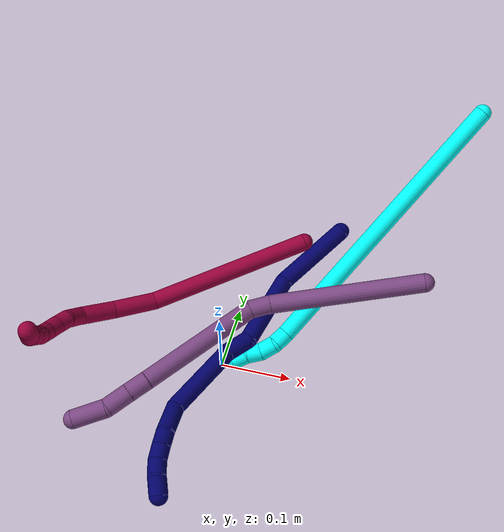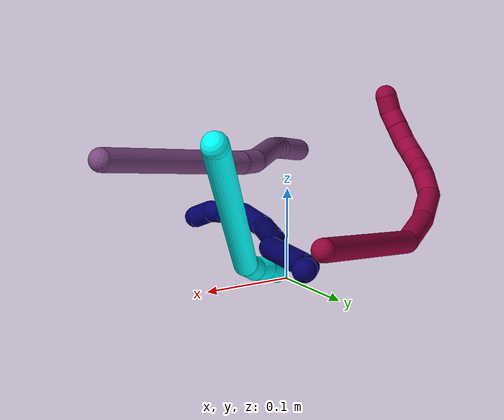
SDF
<sdf version="1.7">
 <world name="default">
  <model name="3">
   <static>0</static>
   <link name="3">
    <collision name="collision-cylinder-e_1_1_4">
     <pose>0.020495 -0.067424 -0.194718 2.80825 0.099133 0.573495</pose>
     <geometry><cylinder><radius>0.0125</radius><length>0.414155</length></cylinder></geometry>
     <surface>
      <friction><ode><mu>1.16</mu><mu2>1.16</mu2><slip1>0</slip1><slip2>0</slip2></ode></friction>
      <contact><ode><kp>1e+06</kp><kd>1</kd><max_vel>0</max_vel><min_depth>0.001</min_depth></ode></contact>
     </surface>
    </collision>
    <visual name="visual-cylinder-e_1_1_4">
     <pose>0.020495 -0.067424 -0.194718 2.80825 0.099133 0.573495</pose>
     <geometry><cylinder><radius>0.0125</radius><length>0.414155</length></cylinder></geometry>
     <material><ambient>0.003922 1 0.996078 1</ambient></material>
    </visual>
    <collision name="collision-cylinder-e_2_4_5">
     <pose>0.040962 -0.140378 -0.398579 2.59752 -0.002528 -0.009061</pose>
     <geometry><cylinder><radius>0.0125</radius><length>0.02137</length></cylinder></geometry>
     <surface>
      <friction><ode><mu>1.16</mu><mu2>1.16</mu2><slip1>0</slip1><slip2>0</slip2></ode></friction>
      <contact><ode><kp>1e+06</kp><kd>1</kd><max_vel>0</max_vel><min_depth>0.001</min_depth></ode></contact>
     </surface>
    </collision>
    <visual name="visual-cylinder-e_2_4_5">
     <pose>0.040962 -0.140378 -0.398579 2.59752 -0.002528 -0.009061</pose>
     <geometry><cylinder><radius>0.0125</radius><length>0.02137</length></cylinder></geometry>
     <material><ambient>0.003922 1 0.996078 1</ambient></material>
    </visual>
    <collision name="collision-cylinder-e_3_5_6">
     <pose>0.038513 -0.147643 -0.418744 2.98559 -0.213726 -1.88222</pose>
     <geometry><cylinder><radius>0.0125</radius><length>0.022836</length></cylinder></geometry>
     <surface>
      <friction><ode><mu>1.16</mu><mu2>1.16</mu2><slip1>0</slip1><slip2>0</slip2></ode></friction>
      <contact><ode><kp>1e+06</kp><kd>1</kd><max_vel>0</max_vel><min_depth>0.001</min_depth></ode></contact>
     </surface>
    </collision>
    <visual name="visual-cylinder-e_3_5_6">
     <pose>0.038513 -0.147643 -0.418744 2.98559 -0.213726 -1.88222</pose>
     <geometry><cylinder><radius>0.0125</radius><length>0.022836</length></cylinder></geometry>
     <material><ambient>0.003922 1 0.996078 1</ambient></material>
    </visual>
    <collision name="collision-cylinder-e_4_6_7">
     <pose>0.030909 -0.151938 -0.438185 2.84624 -0.532306 -2.14256</pose>
     <geometry><cylinder><radius>0.0125</radius><length>0.020424</length></cylinder></geometry>
     <surface>
      <friction><ode><mu>1.16</mu><mu2>1.16</mu2><slip1>0</slip1><slip2>0</slip2></ode></friction>
      <contact><ode><kp>1e+06</kp><kd>1</kd><max_vel>0</max_vel><min_depth>0.001</min_depth></ode></contact>
     </surface>
    </collision>
    <visual name="visual-cylinder-e_4_6_7">
     <pose>0.030909 -0.151938 -0.438185 2.84624 -0.532306 -2.14256</pose>
     <geometry><cylinder><radius>0.0125</radius><length>0.020424</length></cylinder></geometry>
     <material><ambient>0.003922 1 0.996078 1</ambient></material>
    </visual>
    <collision name="collision-cylinder-e_5_7_2">
     <pose>0.022455 -0.155759 -0.456614 3.01642 -0.313487 -2.38657</pose>
     <geometry><cylinder><radius>0.0125</radius><length>0.021214</length></cylinder></geometry>
     <surface>
      <friction><ode><mu>1.16</mu><mu2>1.16</mu2><slip1>0</slip1><slip2>0</slip2></ode></friction>
      <contact><ode><kp>1e+06</kp><kd>1</kd><max_vel>0</max_vel><min_depth>0.001</min_depth></ode></contact>
     </surface>
    </collision>
    <visual name="visual-cylinder-e_5_7_2">
     <pose>0.022455 -0.155759 -0.456614 3.01642 -0.313487 -2.38657</pose>
     <geometry><cylinder><radius>0.0125</radius><length>0.021214</length></cylinder></geometry>
     <material><ambient>0.003922 1 0.996078 1</ambient></material>
    </visual>
    <collision name="collision-sphere-2">
     <pose>0.019184 -0.157018 -0.466625 0 -0 0</pose>
     <geometry><sphere><radius>0.0125</radius></sphere></geometry>
     <surface>
      <friction><ode><mu>1.16</mu><mu2>1.16</mu2><slip1>0</slip1><slip2>0</slip2></ode></friction>
      <contact><ode><kp>1e+06</kp><kd>1</kd><max_vel>0</max_vel><min_depth>0.001</min_depth></ode></contact>
     </surface>
    </collision>
    <visual name="visual-sphere-2">
     <pose>0.019184 -0.157018 -0.466625 0 -0 0</pose>
     <geometry><sphere><radius>0.0125</radius></sphere></geometry>
     <material><ambient>0.003922 1 0.996078 1</ambient></material>
    </visual>
    <collision name="collision-sphere-7">
     <pose>0.025726 -0.154499 -0.446603 0 -0 0</pose>
     <geometry><sphere><radius>0.0125</radius></sphere></geometry>
     <surface>
      <friction><ode><mu>1.16</mu><mu2>1.16</mu2><slip1>0</slip1><slip2>0</slip2></ode></friction>
      <contact><ode><kp>1e+06</kp><kd>1</kd><max_vel>0</max_vel><min_depth>0.001</min_depth></ode></contact>
     </surface>
    </collision>
    <visual name="visual-sphere-7">
     <pose>0.025726 -0.154499 -0.446603 0 -0 0</pose>
     <geometry><sphere><radius>0.0125</radius></sphere></geometry>
     <material><ambient>0.003922 1 0.996078 1</ambient></material>
    </visual>
    <collision name="collision-sphere-6">
     <pose>0.036091 -0.149376 -0.429767 0 -0 0</pose>
     <geometry><sphere><radius>0.0125</radius></sphere></geometry>
     <surface>
      <friction><ode><mu>1.16</mu><mu2>1.16</mu2><slip1>0</slip1><slip2>0</slip2></ode></friction>
      <contact><ode><kp>1e+06</kp><kd>1</kd><max_vel>0</max_vel><min_depth>0.001</min_depth></ode></contact>
     </surface>
    </collision>
    <visual name="visual-sphere-6">
     <pose>0.036091 -0.149376 -0.429767 0 -0 0</pose>
     <geometry><sphere><radius>0.0125</radius></sphere></geometry>
     <material><ambient>0.003922 1 0.996078 1</ambient></material>
    </visual>
    <collision name="collision-sphere-5">
     <pose>0.040935 -0.145909 -0.407721 0 -0 0</pose>
     <geometry><sphere><radius>0.0125</radius></sphere></geometry>
     <surface>
      <friction><ode><mu>1.16</mu><mu2>1.16</mu2><slip1>0</slip1><slip2>0</slip2></ode></friction>
      <contact><ode><kp>1e+06</kp><kd>1</kd><max_vel>0</max_vel><min_depth>0.001</min_depth></ode></contact>
     </surface>
    </collision>
    <visual name="visual-sphere-5">
     <pose>0.040935 -0.145909 -0.407721 0 -0 0</pose>
     <geometry><sphere><radius>0.0125</radius></sphere></geometry>
     <material><ambient>0.003922 1 0.996078 1</ambient></material>
    </visual>
    <collision name="collision-sphere-1">
     <geometry><sphere><radius>0.0125</radius></sphere></geometry>
     <surface>
      <friction><ode><mu>1.16</mu><mu2>1.16</mu2><slip1>0</slip1><slip2>0</slip2></ode></friction>
      <contact><ode><kp>1e+06</kp><kd>1</kd><max_vel>0</max_vel><min_depth>0.001</min_depth></ode></contact>
     </surface>
    </collision>
    <visual name="visual-sphere-1">
     <geometry><sphere><radius>0.0125</radius></sphere></geometry>
     <material><ambient>0.003922 1 0.996078 1</ambient></material>
    </visual>
    <collision name="collision-sphere-4">
     <pose>0.040989 -0.134847 -0.389437 0 -0 0</pose>
     <geometry><sphere><radius>0.0125</radius></sphere></geometry>
     <surface>
      <friction><ode><mu>1.16</mu><mu2>1.16</mu2><slip1>0</slip1><slip2>0</slip2></ode></friction>
      <contact><ode><kp>1e+06</kp><kd>1</kd><max_vel>0</max_vel><min_depth>0.001</min_depth></ode></contact>
     </surface>
    </collision>
    <visual name="visual-sphere-4">
     <pose>0.040989 -0.134847 -0.389437 0 -0 0</pose>
     <geometry><sphere><radius>0.0125</radius></sphere></geometry>
     <material><ambient>0.003922 1 0.996078 1</ambient></material>
    </visual>
    <inertial>
     <pose>0.022701 -0.081406 -0.23472 0 -0 0</pose>
     <mass>0.5</mass>
     <inertia>
      <ixx>0.008164</ixx>
      <ixy>0</ixy>
      <ixz>0</ixz>
      <iyy>-0.001417</iyy>
      <iyz>0</iyz>
      <izz>0.001312</izz>
     </inertia>
    </inertial>
   </link>
   <pose>0.290737 0.341821 0.242871 -0.70103 0.517144 -0.426399</pose>
  </model>
  <model name="7">
   <static>0</static>
   <link name="7">
    <collision name="collision-cylinder-e_1_1_4">
     <pose>0.010054 0.009514 -0.055674 -2.97234 0.176169 -1.61102</pose>
     <geometry><cylinder><radius>0.0125</radius><length>0.114738</length></cylinder></geometry>
     <surface>
      <friction><ode><mu>1.16</mu><mu2>1.16</mu2><slip1>0</slip1><slip2>0</slip2></ode></friction>
      <contact><ode><kp>1e+06</kp><kd>1</kd><max_vel>0</max_vel><min_depth>0.001</min_depth></ode></contact>
     </surface>
    </collision>
    <visual name="visual-cylinder-e_1_1_4">
     <pose>0.010054 0.009514 -0.055674 -2.97234 0.176169 -1.61102</pose>
     <geometry><cylinder><radius>0.0125</radius><length>0.114738</length></cylinder></geometry>
     <material><ambient>0.003922 0 0.403922 1</ambient></material>
    </visual>
    <collision name="collision-cylinder-e_2_4_5">
     <pose>0.026477 0.005624 -0.165103 2.89722 0.114441 0.872939</pose>
     <geometry><cylinder><radius>0.0125</radius><length>0.111533</length></cylinder></geometry>
     <surface>
      <friction><ode><mu>1.16</mu><mu2>1.16</mu2><slip1>0</slip1><slip2>0</slip2></ode></friction>
      <contact><ode><kp>1e+06</kp><kd>1</kd><max_vel>0</max_vel><min_depth>0.001</min_depth></ode></contact>
     </surface>
    </collision>
    <visual name="visual-cylinder-e_2_4_5">
     <pose>0.026477 0.005624 -0.165103 2.89722 0.114441 0.872939</pose>
     <geometry><cylinder><radius>0.0125</radius><length>0.111533</length></cylinder></geometry>
     <material><ambient>0.003922 0 0.403922 1</ambient></material>
    </visual>
    <collision name="collision-cylinder-e_3_5_6">
     <pose>0.031963 -0.004451 -0.236643 -2.95652 -0.048721 0.5135</pose>
     <geometry><cylinder><radius>0.0125</radius><length>0.036229</length></cylinder></geometry>
     <surface>
      <friction><ode><mu>1.16</mu><mu2>1.16</mu2><slip1>0</slip1><slip2>0</slip2></ode></friction>
      <contact><ode><kp>1e+06</kp><kd>1</kd><max_vel>0</max_vel><min_depth>0.001</min_depth></ode></contact>
     </surface>
    </collision>
    <visual name="visual-cylinder-e_3_5_6">
     <pose>0.031963 -0.004451 -0.236643 -2.95652 -0.048721 0.5135</pose>
     <geometry><cylinder><radius>0.0125</radius><length>0.036229</length></cylinder></geometry>
     <material><ambient>0.003922 0 0.403922 1</ambient></material>
    </visual>
    <collision name="collision-cylinder-e_4_6_7">
     <pose>0.035805 -0.002356 -0.307373 3.11828 0.088973 2.62942</pose>
     <geometry><cylinder><radius>0.0125</radius><length>0.106342</length></cylinder></geometry>
     <surface>
      <friction><ode><mu>1.16</mu><mu2>1.16</mu2><slip1>0</slip1><slip2>0</slip2></ode></friction>
      <contact><ode><kp>1e+06</kp><kd>1</kd><max_vel>0</max_vel><min_depth>0.001</min_depth></ode></contact>
     </surface>
    </collision>
    <visual name="visual-cylinder-e_4_6_7">
     <pose>0.035805 -0.002356 -0.307373 3.11828 0.088973 2.62942</pose>
     <geometry><cylinder><radius>0.0125</radius><length>0.106342</length></cylinder></geometry>
     <material><ambient>0.003922 0 0.403922 1</ambient></material>
    </visual>
    <collision name="collision-cylinder-e_5_7_8">
     <pose>0.039714 -0.014499 -0.379155 2.61668 -0.037435 -0.139138</pose>
     <geometry><cylinder><radius>0.0125</radius><length>0.043564</length></cylinder></geometry>
     <surface>
      <friction><ode><mu>1.16</mu><mu2>1.16</mu2><slip1>0</slip1><slip2>0</slip2></ode></friction>
      <contact><ode><kp>1e+06</kp><kd>1</kd><max_vel>0</max_vel><min_depth>0.001</min_depth></ode></contact>
     </surface>
    </collision>
    <visual name="visual-cylinder-e_5_7_8">
     <pose>0.039714 -0.014499 -0.379155 2.61668 -0.037435 -0.139138</pose>
     <geometry><cylinder><radius>0.0125</radius><length>0.043564</length></cylinder></geometry>
     <material><ambient>0.003922 0 0.403922 1</ambient></material>
    </visual>
    <collision name="collision-cylinder-e_6_8_9">
     <pose>0.041324 -0.029914 -0.406798 2.66854 0.240418 0.929108</pose>
     <geometry><cylinder><radius>0.0125</radius><length>0.020373</length></cylinder></geometry>
     <surface>
      <friction><ode><mu>1.16</mu><mu2>1.16</mu2><slip1>0</slip1><slip2>0</slip2></ode></friction>
      <contact><ode><kp>1e+06</kp><kd>1</kd><max_vel>0</max_vel><min_depth>0.001</min_depth></ode></contact>
     </surface>
    </collision>
    <visual name="visual-cylinder-e_6_8_9">
     <pose>0.041324 -0.029914 -0.406798 2.66854 0.240418 0.929108</pose>
     <geometry><cylinder><radius>0.0125</radius><length>0.020373</length></cylinder></geometry>
     <material><ambient>0.003922 0 0.403922 1</ambient></material>
    </visual>
    <collision name="collision-cylinder-e_7_9_10">
     <pose>0.046714 -0.039056 -0.424443 2.65858 0.288734 1.06639</pose>
     <geometry><cylinder><radius>0.0125</radius><length>0.02082</length></cylinder></geometry>
     <surface>
      <friction><ode><mu>1.16</mu><mu2>1.16</mu2><slip1>0</slip1><slip2>0</slip2></ode></friction>
      <contact><ode><kp>1e+06</kp><kd>1</kd><max_vel>0</max_vel><min_depth>0.001</min_depth></ode></contact>
     </surface>
    </collision>
    <visual name="visual-cylinder-e_7_9_10">
     <pose>0.046714 -0.039056 -0.424443 2.65858 0.288734 1.06639</pose>
     <geometry><cylinder><radius>0.0125</radius><length>0.02082</length></cylinder></geometry>
     <material><ambient>0.003922 0 0.403922 1</ambient></material>
    </visual>
    <collision name="collision-cylinder-e_8_10_11">
     <pose>0.052461 -0.050641 -0.440888 2.40135 0.263768 0.658859</pose>
     <geometry><cylinder><radius>0.0125</radius><length>0.021346</length></cylinder></geometry>
     <surface>
      <friction><ode><mu>1.16</mu><mu2>1.16</mu2><slip1>0</slip1><slip2>0</slip2></ode></friction>
      <contact><ode><kp>1e+06</kp><kd>1</kd><max_vel>0</max_vel><min_depth>0.001</min_depth></ode></contact>
     </surface>
    </collision>
    <visual name="visual-cylinder-e_8_10_11">
     <pose>0.052461 -0.050641 -0.440888 2.40135 0.263768 0.658859</pose>
     <geometry><cylinder><radius>0.0125</radius><length>0.021346</length></cylinder></geometry>
     <material><ambient>0.003922 0 0.403922 1</ambient></material>
    </visual>
    <collision name="collision-cylinder-e_9_11_2">
     <pose>0.062238 -0.064686 -0.45609 2.39016 0.592372 1.3169</pose>
     <geometry><cylinder><radius>0.0125</radius><length>0.025056</length></cylinder></geometry>
     <surface>
      <friction><ode><mu>1.16</mu><mu2>1.16</mu2><slip1>0</slip1><slip2>0</slip2></ode></friction>
      <contact><ode><kp>1e+06</kp><kd>1</kd><max_vel>0</max_vel><min_depth>0.001</min_depth></ode></contact>
     </surface>
    </collision>
    <visual name="visual-cylinder-e_9_11_2">
     <pose>0.062238 -0.064686 -0.45609 2.39016 0.592372 1.3169</pose>
     <geometry><cylinder><radius>0.0125</radius><length>0.025056</length></cylinder></geometry>
     <material><ambient>0.003922 0 0.403922 1</ambient></material>
    </visual>
    <collision name="collision-sphere-2">
     <pose>0.069233 -0.071782 -0.463684 0 -0 0</pose>
     <geometry><sphere><radius>0.0125</radius></sphere></geometry>
     <surface>
      <friction><ode><mu>1.16</mu><mu2>1.16</mu2><slip1>0</slip1><slip2>0</slip2></ode></friction>
      <contact><ode><kp>1e+06</kp><kd>1</kd><max_vel>0</max_vel><min_depth>0.001</min_depth></ode></contact>
     </surface>
    </collision>
    <visual name="visual-sphere-2">
     <pose>0.069233 -0.071782 -0.463684 0 -0 0</pose>
     <geometry><sphere><radius>0.0125</radius></sphere></geometry>
     <material><ambient>0.003922 0 0.403922 1</ambient></material>
    </visual>
    <collision name="collision-sphere-11">
     <pose>0.055244 -0.057591 -0.448495 0 -0 0</pose>
     <geometry><sphere><radius>0.0125</radius></sphere></geometry>
     <surface>
      <friction><ode><mu>1.16</mu><mu2>1.16</mu2><slip1>0</slip1><slip2>0</slip2></ode></friction>
      <contact><ode><kp>1e+06</kp><kd>1</kd><max_vel>0</max_vel><min_depth>0.001</min_depth></ode></contact>
     </surface>
    </collision>
    <visual name="visual-sphere-11">
     <pose>0.055244 -0.057591 -0.448495 0 -0 0</pose>
     <geometry><sphere><radius>0.0125</radius></sphere></geometry>
     <material><ambient>0.003922 0 0.403922 1</ambient></material>
    </visual>
    <collision name="collision-sphere-10">
     <pose>0.049678 -0.043691 -0.43328 0 -0 0</pose>
     <geometry><sphere><radius>0.0125</radius></sphere></geometry>
     <surface>
      <friction><ode><mu>1.16</mu><mu2>1.16</mu2><slip1>0</slip1><slip2>0</slip2></ode></friction>
      <contact><ode><kp>1e+06</kp><kd>1</kd><max_vel>0</max_vel><min_depth>0.001</min_depth></ode></contact>
     </surface>
    </collision>
    <visual name="visual-sphere-10">
     <pose>0.049678 -0.043691 -0.43328 0 -0 0</pose>
     <geometry><sphere><radius>0.0125</radius></sphere></geometry>
     <material><ambient>0.003922 0 0.403922 1</ambient></material>
    </visual>
    <collision name="collision-sphere-9">
     <pose>0.04375 -0.034421 -0.415605 0 -0 0</pose>
     <geometry><sphere><radius>0.0125</radius></sphere></geometry>
     <surface>
      <friction><ode><mu>1.16</mu><mu2>1.16</mu2><slip1>0</slip1><slip2>0</slip2></ode></friction>
      <contact><ode><kp>1e+06</kp><kd>1</kd><max_vel>0</max_vel><min_depth>0.001</min_depth></ode></contact>
     </surface>
    </collision>
    <visual name="visual-sphere-9">
     <pose>0.04375 -0.034421 -0.415605 0 -0 0</pose>
     <geometry><sphere><radius>0.0125</radius></sphere></geometry>
     <material><ambient>0.003922 0 0.403922 1</ambient></material>
    </visual>
    <collision name="collision-sphere-4">
     <pose>0.020109 0.019028 -0.111348 0 -0 0</pose>
     <geometry><sphere><radius>0.0125</radius></sphere></geometry>
     <surface>
      <friction><ode><mu>1.16</mu><mu2>1.16</mu2><slip1>0</slip1><slip2>0</slip2></ode></friction>
      <contact><ode><kp>1e+06</kp><kd>1</kd><max_vel>0</max_vel><min_depth>0.001</min_depth></ode></contact>
     </surface>
    </collision>
    <visual name="visual-sphere-4">
     <pose>0.020109 0.019028 -0.111348 0 -0 0</pose>
     <geometry><sphere><radius>0.0125</radius></sphere></geometry>
     <material><ambient>0.003922 0 0.403922 1</ambient></material>
    </visual>
    <collision name="collision-sphere-1">
     <geometry><sphere><radius>0.0125</radius></sphere></geometry>
     <surface>
      <friction><ode><mu>1.16</mu><mu2>1.16</mu2><slip1>0</slip1><slip2>0</slip2></ode></friction>
      <contact><ode><kp>1e+06</kp><kd>1</kd><max_vel>0</max_vel><min_depth>0.001</min_depth></ode></contact>
     </surface>
    </collision>
    <visual name="visual-sphere-1">
     <geometry><sphere><radius>0.0125</radius></sphere></geometry>
     <material><ambient>0.003922 0 0.403922 1</ambient></material>
    </visual>
    <collision name="collision-sphere-8">
     <pose>0.038899 -0.025406 -0.397991 0 -0 0</pose>
     <geometry><sphere><radius>0.0125</radius></sphere></geometry>
     <surface>
      <friction><ode><mu>1.16</mu><mu2>1.16</mu2><slip1>0</slip1><slip2>0</slip2></ode></friction>
      <contact><ode><kp>1e+06</kp><kd>1</kd><max_vel>0</max_vel><min_depth>0.001</min_depth></ode></contact>
     </surface>
    </collision>
    <visual name="visual-sphere-8">
     <pose>0.038899 -0.025406 -0.397991 0 -0 0</pose>
     <geometry><sphere><radius>0.0125</radius></sphere></geometry>
     <material><ambient>0.003922 0 0.403922 1</ambient></material>
    </visual>
    <collision name="collision-sphere-5">
     <pose>0.032845 -0.007781 -0.218859 0 -0 0</pose>
     <geometry><sphere><radius>0.0125</radius></sphere></geometry>
     <surface>
      <friction><ode><mu>1.16</mu><mu2>1.16</mu2><slip1>0</slip1><slip2>0</slip2></ode></friction>
      <contact><ode><kp>1e+06</kp><kd>1</kd><max_vel>0</max_vel><min_depth>0.001</min_depth></ode></contact>
     </surface>
    </collision>
    <visual name="visual-sphere-5">
     <pose>0.032845 -0.007781 -0.218859 0 -0 0</pose>
     <geometry><sphere><radius>0.0125</radius></sphere></geometry>
     <material><ambient>0.003922 0 0.403922 1</ambient></material>
    </visual>
    <collision name="collision-sphere-6">
     <pose>0.03108 -0.001122 -0.254427 0 -0 0</pose>
     <geometry><sphere><radius>0.0125</radius></sphere></geometry>
     <surface>
      <friction><ode><mu>1.16</mu><mu2>1.16</mu2><slip1>0</slip1><slip2>0</slip2></ode></friction>
      <contact><ode><kp>1e+06</kp><kd>1</kd><max_vel>0</max_vel><min_depth>0.001</min_depth></ode></contact>
     </surface>
    </collision>
    <visual name="visual-sphere-6">
     <pose>0.03108 -0.001122 -0.254427 0 -0 0</pose>
     <geometry><sphere><radius>0.0125</radius></sphere></geometry>
     <material><ambient>0.003922 0 0.403922 1</ambient></material>
    </visual>
    <collision name="collision-sphere-7">
     <pose>0.040529 -0.003591 -0.360319 0 -0 0</pose>
     <geometry><sphere><radius>0.0125</radius></sphere></geometry>
     <surface>
      <friction><ode><mu>1.16</mu><mu2>1.16</mu2><slip1>0</slip1><slip2>0</slip2></ode></friction>
      <contact><ode><kp>1e+06</kp><kd>1</kd><max_vel>0</max_vel><min_depth>0.001</min_depth></ode></contact>
     </surface>
    </collision>
    <visual name="visual-sphere-7">
     <pose>0.040529 -0.003591 -0.360319 0 -0 0</pose>
     <geometry><sphere><radius>0.0125</radius></sphere></geometry>
     <material><ambient>0.003922 0 0.403922 1</ambient></material>
    </visual>
    <inertial>
     <pose>0.030592 -0.006898 -0.241087 0 -0 0</pose>
     <mass>0.5</mass>
     <inertia><ixx>2.4e-05</ixx><ixy>0</ixy><ixz>0</ixz><iyy>3e-05</iyy><iyz>0</iyz><izz>-6.7e-05</izz></inertia>
    </inertial>
   </link>
   <pose>0.122339 0.221114 0.080918 -1.44557 1.30308 -0.367981</pose>
  </model>
  <model name="8">
   <static>0</static>
   <link name="8">
    <collision name="collision-cylinder-e_1_1_4">
     <pose>-0.115666 -0.015211 0.0065 1.16699 -1.42875 -1.03987</pose>
     <geometry><cylinder><radius>0.0125</radius><length>0.233685</length></cylinder></geometry>
     <surface>
      <friction><ode><mu>1.16</mu><mu2>1.16</mu2><slip1>0</slip1><slip2>0</slip2></ode></friction>
      <contact><ode><kp>1e+06</kp><kd>1</kd><max_vel>0</max_vel><min_depth>0.001</min_depth></ode></contact>
     </surface>
    </collision>
    <visual name="visual-cylinder-e_1_1_4">
     <pose>-0.115666 -0.015211 0.0065 1.16699 -1.42875 -1.03987</pose>
     <geometry><cylinder><radius>0.0125</radius><length>0.233685</length></cylinder></geometry>
     <material><ambient>0.584314 0 0.227451 1</ambient></material>
    </visual>
    <collision name="collision-cylinder-e_2_4_5">
     <pose>-0.26062 -0.035089 0.003384 2.68976 -1.22089 -2.50673</pose>
     <geometry><cylinder><radius>0.0125</radius><length>0.062354</length></cylinder></geometry>
     <surface>
      <friction><ode><mu>1.16</mu><mu2>1.16</mu2><slip1>0</slip1><slip2>0</slip2></ode></friction>
      <contact><ode><kp>1e+06</kp><kd>1</kd><max_vel>0</max_vel><min_depth>0.001</min_depth></ode></contact>
     </surface>
    </collision>
    <visual name="visual-cylinder-e_2_4_5">
     <pose>-0.26062 -0.035089 0.003384 2.68976 -1.22089 -2.50673</pose>
     <geometry><cylinder><radius>0.0125</radius><length>0.062354</length></cylinder></geometry>
     <material><ambient>0.584314 0 0.227451 1</ambient></material>
    </visual>
    <collision name="collision-cylinder-e_3_5_6">
     <pose>-0.312015 -0.041979 -0.019028 2.96953 -1.03961 -2.84244</pose>
     <geometry><cylinder><radius>0.0125</radius><length>0.051281</length></cylinder></geometry>
     <surface>
      <friction><ode><mu>1.16</mu><mu2>1.16</mu2><slip1>0</slip1><slip2>0</slip2></ode></friction>
      <contact><ode><kp>1e+06</kp><kd>1</kd><max_vel>0</max_vel><min_depth>0.001</min_depth></ode></contact>
     </surface>
    </collision>
    <visual name="visual-cylinder-e_3_5_6">
     <pose>-0.312015 -0.041979 -0.019028 2.96953 -1.03961 -2.84244</pose>
     <geometry><cylinder><radius>0.0125</radius><length>0.051281</length></cylinder></geometry>
     <material><ambient>0.584314 0 0.227451 1</ambient></material>
    </visual>
    <collision name="collision-cylinder-e_4_6_7">
     <pose>-0.342366 -0.041873 -0.043475 -2.94421 -0.606589 2.52875</pose>
     <geometry><cylinder><radius>0.0125</radius><length>0.028922</length></cylinder></geometry>
     <surface>
      <friction><ode><mu>1.16</mu><mu2>1.16</mu2><slip1>0</slip1><slip2>0</slip2></ode></friction>
      <contact><ode><kp>1e+06</kp><kd>1</kd><max_vel>0</max_vel><min_depth>0.001</min_depth></ode></contact>
     </surface>
    </collision>
    <visual name="visual-cylinder-e_4_6_7">
     <pose>-0.342366 -0.041873 -0.043475 -2.94421 -0.606589 2.52875</pose>
     <geometry><cylinder><radius>0.0125</radius><length>0.028922</length></cylinder></geometry>
     <material><ambient>0.584314 0 0.227451 1</ambient></material>
    </visual>
    <collision name="collision-cylinder-e_5_7_8">
     <pose>-0.358416 -0.036613 -0.06101 -2.67965 -0.870916 2.20556</pose>
     <geometry><cylinder><radius>0.0125</radius><length>0.020411</length></cylinder></geometry>
     <surface>
      <friction><ode><mu>1.16</mu><mu2>1.16</mu2><slip1>0</slip1><slip2>0</slip2></ode></friction>
      <contact><ode><kp>1e+06</kp><kd>1</kd><max_vel>0</max_vel><min_depth>0.001</min_depth></ode></contact>
     </surface>
    </collision>
    <visual name="visual-cylinder-e_5_7_8">
     <pose>-0.358416 -0.036613 -0.06101 -2.67965 -0.870916 2.20556</pose>
     <geometry><cylinder><radius>0.0125</radius><length>0.020411</length></cylinder></geometry>
     <material><ambient>0.584314 0 0.227451 1</ambient></material>
    </visual>
    <collision name="collision-cylinder-e_6_8_9">
     <pose>-0.373305 -0.02974 -0.074599 -2.66851 -0.685754 1.95373</pose>
     <geometry><cylinder><radius>0.0125</radius><length>0.022365</length></cylinder></geometry>
     <surface>
      <friction><ode><mu>1.16</mu><mu2>1.16</mu2><slip1>0</slip1><slip2>0</slip2></ode></friction>
      <contact><ode><kp>1e+06</kp><kd>1</kd><max_vel>0</max_vel><min_depth>0.001</min_depth></ode></contact>
     </surface>
    </collision>
    <visual name="visual-cylinder-e_6_8_9">
     <pose>-0.373305 -0.02974 -0.074599 -2.66851 -0.685754 1.95373</pose>
     <geometry><cylinder><radius>0.0125</radius><length>0.022365</length></cylinder></geometry>
     <material><ambient>0.584314 0 0.227451 1</ambient></material>
    </visual>
    <collision name="collision-cylinder-e_7_9_10">
     <pose>-0.384562 -0.022035 -0.090856 -2.72721 -0.420328 1.58546</pose>
     <geometry><cylinder><radius>0.0125</radius><length>0.020467</length></cylinder></geometry>
     <surface>
      <friction><ode><mu>1.16</mu><mu2>1.16</mu2><slip1>0</slip1><slip2>0</slip2></ode></friction>
      <contact><ode><kp>1e+06</kp><kd>1</kd><max_vel>0</max_vel><min_depth>0.001</min_depth></ode></contact>
     </surface>
    </collision>
    <visual name="visual-cylinder-e_7_9_10">
     <pose>-0.384562 -0.022035 -0.090856 -2.72721 -0.420328 1.58546</pose>
     <geometry><cylinder><radius>0.0125</radius><length>0.020467</length></cylinder></geometry>
     <material><ambient>0.584314 0 0.227451 1</ambient></material>
    </visual>
    <collision name="collision-cylinder-e_8_10_11">
     <pose>-0.390873 -0.015737 -0.109067 -2.88481 -0.210581 1.37194</pose>
     <geometry><cylinder><radius>0.0125</radius><length>0.020425</length></cylinder></geometry>
     <surface>
      <friction><ode><mu>1.16</mu><mu2>1.16</mu2><slip1>0</slip1><slip2>0</slip2></ode></friction>
      <contact><ode><kp>1e+06</kp><kd>1</kd><max_vel>0</max_vel><min_depth>0.001</min_depth></ode></contact>
     </surface>
    </collision>
    <visual name="visual-cylinder-e_8_10_11">
     <pose>-0.390873 -0.015737 -0.109067 -2.88481 -0.210581 1.37194</pose>
     <geometry><cylinder><radius>0.0125</radius><length>0.020425</length></cylinder></geometry>
     <material><ambient>0.584314 0 0.227451 1</ambient></material>
    </visual>
    <collision name="collision-cylinder-e_9_11_12">
     <pose>-0.395547 -0.010454 -0.128032 -2.85456 -0.256025 1.45532</pose>
     <geometry><cylinder><radius>0.0125</radius><length>0.020057</length></cylinder></geometry>
     <surface>
      <friction><ode><mu>1.16</mu><mu2>1.16</mu2><slip1>0</slip1><slip2>0</slip2></ode></friction>
      <contact><ode><kp>1e+06</kp><kd>1</kd><max_vel>0</max_vel><min_depth>0.001</min_depth></ode></contact>
     </surface>
    </collision>
    <visual name="visual-cylinder-e_9_11_12">
     <pose>-0.395547 -0.010454 -0.128032 -2.85456 -0.256025 1.45532</pose>
     <geometry><cylinder><radius>0.0125</radius><length>0.020057</length></cylinder></geometry>
     <material><ambient>0.584314 0 0.227451 1</ambient></material>
    </visual>
    <collision name="collision-cylinder-e_10_12_2">
     <pose>-0.396896 -0.0077 -0.147281 -3.14087 0.119122 -3.12944</pose>
     <geometry><cylinder><radius>0.0125</radius><length>0.020031</length></cylinder></geometry>
     <surface>
      <friction><ode><mu>1.16</mu><mu2>1.16</mu2><slip1>0</slip1><slip2>0</slip2></ode></friction>
      <contact><ode><kp>1e+06</kp><kd>1</kd><max_vel>0</max_vel><min_depth>0.001</min_depth></ode></contact>
     </surface>
    </collision>
    <visual name="visual-cylinder-e_10_12_2">
     <pose>-0.396896 -0.0077 -0.147281 -3.14087 0.119122 -3.12944</pose>
     <geometry><cylinder><radius>0.0125</radius><length>0.020031</length></cylinder></geometry>
     <material><ambient>0.584314 0 0.227451 1</ambient></material>
    </visual>
    <collision name="collision-sphere-2">
     <pose>-0.395706 -0.007693 -0.157225 0 -0 0</pose>
     <geometry><sphere><radius>0.0125</radius></sphere></geometry>
     <surface>
      <friction><ode><mu>1.16</mu><mu2>1.16</mu2><slip1>0</slip1><slip2>0</slip2></ode></friction>
      <contact><ode><kp>1e+06</kp><kd>1</kd><max_vel>0</max_vel><min_depth>0.001</min_depth></ode></contact>
     </surface>
    </collision>
    <visual name="visual-sphere-2">
     <pose>-0.395706 -0.007693 -0.157225 0 -0 0</pose>
     <geometry><sphere><radius>0.0125</radius></sphere></geometry>
     <material><ambient>0.584314 0 0.227451 1</ambient></material>
    </visual>
    <collision name="collision-sphere-12">
     <pose>-0.398087 -0.007707 -0.137336 0 -0 0</pose>
     <geometry><sphere><radius>0.0125</radius></sphere></geometry>
     <surface>
      <friction><ode><mu>1.16</mu><mu2>1.16</mu2><slip1>0</slip1><slip2>0</slip2></ode></friction>
      <contact><ode><kp>1e+06</kp><kd>1</kd><max_vel>0</max_vel><min_depth>0.001</min_depth></ode></contact>
     </surface>
    </collision>
    <visual name="visual-sphere-12">
     <pose>-0.398087 -0.007707 -0.137336 0 -0 0</pose>
     <geometry><sphere><radius>0.0125</radius></sphere></geometry>
     <material><ambient>0.584314 0 0.227451 1</ambient></material>
    </visual>
    <collision name="collision-sphere-11">
     <pose>-0.393007 -0.013201 -0.118727 0 -0 0</pose>
     <geometry><sphere><radius>0.0125</radius></sphere></geometry>
     <surface>
      <friction><ode><mu>1.16</mu><mu2>1.16</mu2><slip1>0</slip1><slip2>0</slip2></ode></friction>
      <contact><ode><kp>1e+06</kp><kd>1</kd><max_vel>0</max_vel><min_depth>0.001</min_depth></ode></contact>
     </surface>
    </collision>
    <visual name="visual-sphere-11">
     <pose>-0.393007 -0.013201 -0.118727 0 -0 0</pose>
     <geometry><sphere><radius>0.0125</radius></sphere></geometry>
     <material><ambient>0.584314 0 0.227451 1</ambient></material>
    </visual>
    <collision name="collision-sphere-10">
     <pose>-0.388738 -0.018273 -0.099408 0 -0 0</pose>
     <geometry><sphere><radius>0.0125</radius></sphere></geometry>
     <surface>
      <friction><ode><mu>1.16</mu><mu2>1.16</mu2><slip1>0</slip1><slip2>0</slip2></ode></friction>
      <contact><ode><kp>1e+06</kp><kd>1</kd><max_vel>0</max_vel><min_depth>0.001</min_depth></ode></contact>
     </surface>
    </collision>
    <visual name="visual-sphere-10">
     <pose>-0.388738 -0.018273 -0.099408 0 -0 0</pose>
     <geometry><sphere><radius>0.0125</radius></sphere></geometry>
     <material><ambient>0.584314 0 0.227451 1</ambient></material>
    </visual>
    <collision name="collision-sphere-9">
     <pose>-0.380386 -0.025797 -0.082304 0 -0 0</pose>
     <geometry><sphere><radius>0.0125</radius></sphere></geometry>
     <surface>
      <friction><ode><mu>1.16</mu><mu2>1.16</mu2><slip1>0</slip1><slip2>0</slip2></ode></friction>
      <contact><ode><kp>1e+06</kp><kd>1</kd><max_vel>0</max_vel><min_depth>0.001</min_depth></ode></contact>
     </surface>
    </collision>
    <visual name="visual-sphere-9">
     <pose>-0.380386 -0.025797 -0.082304 0 -0 0</pose>
     <geometry><sphere><radius>0.0125</radius></sphere></geometry>
     <material><ambient>0.584314 0 0.227451 1</ambient></material>
    </visual>
    <collision name="collision-sphere-4">
     <pose>-0.231332 -0.030422 0.012999 0 -0 0</pose>
     <geometry><sphere><radius>0.0125</radius></sphere></geometry>
     <surface>
      <friction><ode><mu>1.16</mu><mu2>1.16</mu2><slip1>0</slip1><slip2>0</slip2></ode></friction>
      <contact><ode><kp>1e+06</kp><kd>1</kd><max_vel>0</max_vel><min_depth>0.001</min_depth></ode></contact>
     </surface>
    </collision>
    <visual name="visual-sphere-4">
     <pose>-0.231332 -0.030422 0.012999 0 -0 0</pose>
     <geometry><sphere><radius>0.0125</radius></sphere></geometry>
     <material><ambient>0.584314 0 0.227451 1</ambient></material>
    </visual>
    <collision name="collision-sphere-1">
     <geometry><sphere><radius>0.0125</radius></sphere></geometry>
     <surface>
      <friction><ode><mu>1.16</mu><mu2>1.16</mu2><slip1>0</slip1><slip2>0</slip2></ode></friction>
      <contact><ode><kp>1e+06</kp><kd>1</kd><max_vel>0</max_vel><min_depth>0.001</min_depth></ode></contact>
     </surface>
    </collision>
    <visual name="visual-sphere-1">
     <geometry><sphere><radius>0.0125</radius></sphere></geometry>
     <material><ambient>0.584314 0 0.227451 1</ambient></material>
    </visual>
    <collision name="collision-sphere-8">
     <pose>-0.366223 -0.033684 -0.066895 0 -0 0</pose>
     <geometry><sphere><radius>0.0125</radius></sphere></geometry>
     <surface>
      <friction><ode><mu>1.16</mu><mu2>1.16</mu2><slip1>0</slip1><slip2>0</slip2></ode></friction>
      <contact><ode><kp>1e+06</kp><kd>1</kd><max_vel>0</max_vel><min_depth>0.001</min_depth></ode></contact>
     </surface>
    </collision>
    <visual name="visual-sphere-8">
     <pose>-0.366223 -0.033684 -0.066895 0 -0 0</pose>
     <geometry><sphere><radius>0.0125</radius></sphere></geometry>
     <material><ambient>0.584314 0 0.227451 1</ambient></material>
    </visual>
    <collision name="collision-sphere-5">
     <pose>-0.289908 -0.039755 -0.006231 0 -0 0</pose>
     <geometry><sphere><radius>0.0125</radius></sphere></geometry>
     <surface>
      <friction><ode><mu>1.16</mu><mu2>1.16</mu2><slip1>0</slip1><slip2>0</slip2></ode></friction>
      <contact><ode><kp>1e+06</kp><kd>1</kd><max_vel>0</max_vel><min_depth>0.001</min_depth></ode></contact>
     </surface>
    </collision>
    <visual name="visual-sphere-5">
     <pose>-0.289908 -0.039755 -0.006231 0 -0 0</pose>
     <geometry><sphere><radius>0.0125</radius></sphere></geometry>
     <material><ambient>0.584314 0 0.227451 1</ambient></material>
    </visual>
    <collision name="collision-sphere-6">
     <pose>-0.334122 -0.044203 -0.031825 0 -0 0</pose>
     <geometry><sphere><radius>0.0125</radius></sphere></geometry>
     <surface>
      <friction><ode><mu>1.16</mu><mu2>1.16</mu2><slip1>0</slip1><slip2>0</slip2></ode></friction>
      <contact><ode><kp>1e+06</kp><kd>1</kd><max_vel>0</max_vel><min_depth>0.001</min_depth></ode></contact>
     </surface>
    </collision>
    <visual name="visual-sphere-6">
     <pose>-0.334122 -0.044203 -0.031825 0 -0 0</pose>
     <geometry><sphere><radius>0.0125</radius></sphere></geometry>
     <material><ambient>0.584314 0 0.227451 1</ambient></material>
    </visual>
    <collision name="collision-sphere-7">
     <pose>-0.35061 -0.039543 -0.055126 0 -0 0</pose>
     <geometry><sphere><radius>0.0125</radius></sphere></geometry>
     <surface>
      <friction><ode><mu>1.16</mu><mu2>1.16</mu2><slip1>0</slip1><slip2>0</slip2></ode></friction>
      <contact><ode><kp>1e+06</kp><kd>1</kd><max_vel>0</max_vel><min_depth>0.001</min_depth></ode></contact>
     </surface>
    </collision>
    <visual name="visual-sphere-7">
     <pose>-0.35061 -0.039543 -0.055126 0 -0 0</pose>
     <geometry><sphere><radius>0.0125</radius></sphere></geometry>
     <material><ambient>0.584314 0 0.227451 1</ambient></material>
    </visual>
    <inertial>
     <pose>-0.233171 -0.02331 -0.026045 0 -0 0</pose>
     <mass>0.5</mass>
     <inertia>
      <ixx>-0.000101</ixx>
      <ixy>0</ixy>
      <ixz>0</ixz>
      <iyy>0.000966</iyy>
      <iyz>0</iyz>
      <izz>0.001229</izz>
     </inertia>
    </inertial>
   </link>
   <pose>0.075635 0.183465 0.084561 -2.85145 -0.188007 0.716856</pose>
  </model>
  <model name="20">
   <static>0</static>
   <link name="20">
    <collision name="collision-cylinder-e_1_1_4">
     <pose>-0.043208 -0.046465 -0.079137 2.61068 -0.440041 -1.37674</pose>
     <geometry><cylinder><radius>0.0125</radius><length>0.202865</length></cylinder></geometry>
     <surface>
      <friction><ode><mu>1.16</mu><mu2>1.16</mu2><slip1>0</slip1><slip2>0</slip2></ode></friction>
      <contact><ode><kp>1e+06</kp><kd>1</kd><max_vel>0</max_vel><min_depth>0.001</min_depth></ode></contact>
     </surface>
    </collision>
    <visual name="visual-cylinder-e_1_1_4">
     <pose>-0.043208 -0.046465 -0.079137 2.61068 -0.440041 -1.37674</pose>
     <geometry><cylinder><radius>0.0125</radius><length>0.202865</length></cylinder></geometry>
     <material><ambient>0.478431 0.278431 0.509804 1</ambient></material>
    </visual>
    <collision name="collision-cylinder-e_2_4_5">
     <pose>-0.093795 -0.101028 -0.167404 2.41599 -0.543801 -1.26696</pose>
     <geometry><cylinder><radius>0.0125</radius><length>0.028525</length></cylinder></geometry>
     <surface>
      <friction><ode><mu>1.16</mu><mu2>1.16</mu2><slip1>0</slip1><slip2>0</slip2></ode></friction>
      <contact><ode><kp>1e+06</kp><kd>1</kd><max_vel>0</max_vel><min_depth>0.001</min_depth></ode></contact>
     </surface>
    </collision>
    <visual name="visual-cylinder-e_2_4_5">
     <pose>-0.093795 -0.101028 -0.167404 2.41599 -0.543801 -1.26696</pose>
     <geometry><cylinder><radius>0.0125</radius><length>0.028525</length></cylinder></geometry>
     <material><ambient>0.478431 0.278431 0.509804 1</ambient></material>
    </visual>
    <collision name="collision-cylinder-e_3_5_6">
     <pose>-0.144739 -0.173762 -0.200659 1.92802 -0.563237 -0.78978</pose>
     <geometry><cylinder><radius>0.0125</radius><length>0.163186</length></cylinder></geometry>
     <surface>
      <friction><ode><mu>1.16</mu><mu2>1.16</mu2><slip1>0</slip1><slip2>0</slip2></ode></friction>
      <contact><ode><kp>1e+06</kp><kd>1</kd><max_vel>0</max_vel><min_depth>0.001</min_depth></ode></contact>
     </surface>
    </collision>
    <visual name="visual-cylinder-e_3_5_6">
     <pose>-0.144739 -0.173762 -0.200659 1.92802 -0.563237 -0.78978</pose>
     <geometry><cylinder><radius>0.0125</radius><length>0.163186</length></cylinder></geometry>
     <material><ambient>0.478431 0.278431 0.509804 1</ambient></material>
    </visual>
    <collision name="collision-cylinder-e_4_6_7">
     <pose>-0.195075 -0.249431 -0.229693 1.98946 -0.51096 -0.764626</pose>
     <geometry><cylinder><radius>0.0125</radius><length>0.027692</length></cylinder></geometry>
     <surface>
      <friction><ode><mu>1.16</mu><mu2>1.16</mu2><slip1>0</slip1><slip2>0</slip2></ode></friction>
      <contact><ode><kp>1e+06</kp><kd>1</kd><max_vel>0</max_vel><min_depth>0.001</min_depth></ode></contact>
     </surface>
    </collision>
    <visual name="visual-cylinder-e_4_6_7">
     <pose>-0.195075 -0.249431 -0.229693 1.98946 -0.51096 -0.764626</pose>
     <geometry><cylinder><radius>0.0125</radius><length>0.027692</length></cylinder></geometry>
     <material><ambient>0.478431 0.278431 0.509804 1</ambient></material>
    </visual>
    <collision name="collision-cylinder-e_5_7_8">
     <pose>-0.209754 -0.273806 -0.240364 1.97843 -0.498381 -0.73864</pose>
     <geometry><cylinder><radius>0.0125</radius><length>0.033089</length></cylinder></geometry>
     <surface>
      <friction><ode><mu>1.16</mu><mu2>1.16</mu2><slip1>0</slip1><slip2>0</slip2></ode></friction>
      <contact><ode><kp>1e+06</kp><kd>1</kd><max_vel>0</max_vel><min_depth>0.001</min_depth></ode></contact>
     </surface>
    </collision>
    <visual name="visual-cylinder-e_5_7_8">
     <pose>-0.209754 -0.273806 -0.240364 1.97843 -0.498381 -0.73864</pose>
     <geometry><cylinder><radius>0.0125</radius><length>0.033089</length></cylinder></geometry>
     <material><ambient>0.478431 0.278431 0.509804 1</ambient></material>
    </visual>
    <collision name="collision-cylinder-e_6_8_2">
     <pose>-0.226964 -0.300922 -0.261024 2.3954 -0.429832 -1.01743</pose>
     <geometry><cylinder><radius>0.0125</radius><length>0.044643</length></cylinder></geometry>
     <surface>
      <friction><ode><mu>1.16</mu><mu2>1.16</mu2><slip1>0</slip1><slip2>0</slip2></ode></friction>
      <contact><ode><kp>1e+06</kp><kd>1</kd><max_vel>0</max_vel><min_depth>0.001</min_depth></ode></contact>
     </surface>
    </collision>
    <visual name="visual-cylinder-e_6_8_2">
     <pose>-0.226964 -0.300922 -0.261024 2.3954 -0.429832 -1.01743</pose>
     <geometry><cylinder><radius>0.0125</radius><length>0.044643</length></cylinder></geometry>
     <material><ambient>0.478431 0.278431 0.509804 1</ambient></material>
    </visual>
    <collision name="collision-sphere-2">
     <pose>-0.236266 -0.314696 -0.275924 0 -0 0</pose>
     <geometry><sphere><radius>0.0125</radius></sphere></geometry>
     <surface>
      <friction><ode><mu>1.16</mu><mu2>1.16</mu2><slip1>0</slip1><slip2>0</slip2></ode></friction>
      <contact><ode><kp>1e+06</kp><kd>1</kd><max_vel>0</max_vel><min_depth>0.001</min_depth></ode></contact>
     </surface>
    </collision>
    <visual name="visual-sphere-2">
     <pose>-0.236266 -0.314696 -0.275924 0 -0 0</pose>
     <geometry><sphere><radius>0.0125</radius></sphere></geometry>
     <material><ambient>0.478431 0.278431 0.509804 1</ambient></material>
    </visual>
    <collision name="collision-sphere-4">
     <pose>-0.086416 -0.092929 -0.158274 0 -0 0</pose>
     <geometry><sphere><radius>0.0125</radius></sphere></geometry>
     <surface>
      <friction><ode><mu>1.16</mu><mu2>1.16</mu2><slip1>0</slip1><slip2>0</slip2></ode></friction>
      <contact><ode><kp>1e+06</kp><kd>1</kd><max_vel>0</max_vel><min_depth>0.001</min_depth></ode></contact>
     </surface>
    </collision>
    <visual name="visual-sphere-4">
     <pose>-0.086416 -0.092929 -0.158274 0 -0 0</pose>
     <geometry><sphere><radius>0.0125</radius></sphere></geometry>
     <material><ambient>0.478431 0.278431 0.509804 1</ambient></material>
    </visual>
    <collision name="collision-sphere-1">
     <geometry><sphere><radius>0.0125</radius></sphere></geometry>
     <surface>
      <friction><ode><mu>1.16</mu><mu2>1.16</mu2><slip1>0</slip1><slip2>0</slip2></ode></friction>
      <contact><ode><kp>1e+06</kp><kd>1</kd><max_vel>0</max_vel><min_depth>0.001</min_depth></ode></contact>
     </surface>
    </collision>
    <visual name="visual-sphere-1">
     <geometry><sphere><radius>0.0125</radius></sphere></geometry>
     <material><ambient>0.478431 0.278431 0.509804 1</ambient></material>
    </visual>
    <collision name="collision-sphere-8">
     <pose>-0.217662 -0.287147 -0.246125 0 -0 0</pose>
     <geometry><sphere><radius>0.0125</radius></sphere></geometry>
     <surface>
      <friction><ode><mu>1.16</mu><mu2>1.16</mu2><slip1>0</slip1><slip2>0</slip2></ode></friction>
      <contact><ode><kp>1e+06</kp><kd>1</kd><max_vel>0</max_vel><min_depth>0.001</min_depth></ode></contact>
     </surface>
    </collision>
    <visual name="visual-sphere-8">
     <pose>-0.217662 -0.287147 -0.246125 0 -0 0</pose>
     <geometry><sphere><radius>0.0125</radius></sphere></geometry>
     <material><ambient>0.478431 0.278431 0.509804 1</ambient></material>
    </visual>
    <collision name="collision-sphere-5">
     <pose>-0.101174 -0.109128 -0.176535 0 -0 0</pose>
     <geometry><sphere><radius>0.0125</radius></sphere></geometry>
     <surface>
      <friction><ode><mu>1.16</mu><mu2>1.16</mu2><slip1>0</slip1><slip2>0</slip2></ode></friction>
      <contact><ode><kp>1e+06</kp><kd>1</kd><max_vel>0</max_vel><min_depth>0.001</min_depth></ode></contact>
     </surface>
    </collision>
    <visual name="visual-sphere-5">
     <pose>-0.101174 -0.109128 -0.176535 0 -0 0</pose>
     <geometry><sphere><radius>0.0125</radius></sphere></geometry>
     <material><ambient>0.478431 0.278431 0.509804 1</ambient></material>
    </visual>
    <collision name="collision-sphere-6">
     <pose>-0.188304 -0.238396 -0.224783 0 -0 0</pose>
     <geometry><sphere><radius>0.0125</radius></sphere></geometry>
     <surface>
      <friction><ode><mu>1.16</mu><mu2>1.16</mu2><slip1>0</slip1><slip2>0</slip2></ode></friction>
      <contact><ode><kp>1e+06</kp><kd>1</kd><max_vel>0</max_vel><min_depth>0.001</min_depth></ode></contact>
     </surface>
    </collision>
    <visual name="visual-sphere-6">
     <pose>-0.188304 -0.238396 -0.224783 0 -0 0</pose>
     <geometry><sphere><radius>0.0125</radius></sphere></geometry>
     <material><ambient>0.478431 0.278431 0.509804 1</ambient></material>
    </visual>
    <collision name="collision-sphere-7">
     <pose>-0.201846 -0.260465 -0.234603 0 -0 0</pose>
     <geometry><sphere><radius>0.0125</radius></sphere></geometry>
     <surface>
      <friction><ode><mu>1.16</mu><mu2>1.16</mu2><slip1>0</slip1><slip2>0</slip2></ode></friction>
      <contact><ode><kp>1e+06</kp><kd>1</kd><max_vel>0</max_vel><min_depth>0.001</min_depth></ode></contact>
     </surface>
    </collision>
    <visual name="visual-sphere-7">
     <pose>-0.201846 -0.260465 -0.234603 0 -0 0</pose>
     <geometry><sphere><radius>0.0125</radius></sphere></geometry>
     <material><ambient>0.478431 0.278431 0.509804 1</ambient></material>
    </visual>
    <inertial>
     <pose>-0.11507 -0.140129 -0.159082 0 -0 0</pose>
     <mass>0.5</mass>
     <inertia>
      <ixx>-0.000526</ixx>
      <ixy>0</ixy>
      <ixz>0</ixz>
      <iyy>-0.000813</iyy>
      <iyz>0</iyz>
      <izz>0.001111</izz>
     </inertia>
    </inertial>
   </link>
   <pose>0.258954 0.071077 0.175836 1.05665 0.869826 0.762693</pose>
  </model>
 </world>
</sdf>
